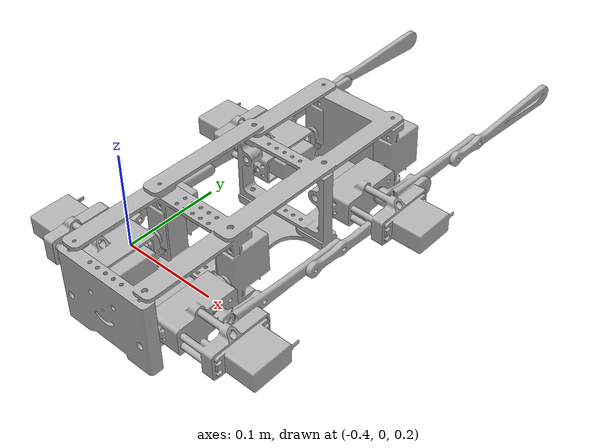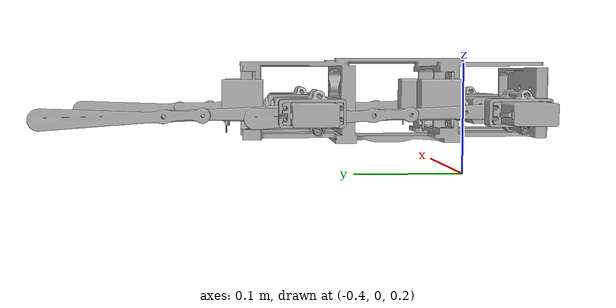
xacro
<?xml version="1.0" ?>
<robot name="unoffcial_dog" xmlns:xacro="http://www.ros.org/wiki/xacro">

<xacro:include filename="$(find unoffcial_dog_description)/urdf/materials.xacro" />
<xacro:include filename="$(find unoffcial_dog_description)/urdf/unoffcial_dog.trans" />
<xacro:include filename="$(find unoffcial_dog_description)/urdf/unoffcial_dog.gazebo" />
<link name="base_link">
  <inertial>
    <origin rpy="0 0 0" xyz="-0.30031866605464624 0.0488302386913517 0.25974219951421007"/>
    <mass value="0.2606887362516945"/>
    <inertia ixx="0.002843" ixy="6e-06" ixz="-0.0" iyy="0.000543" iyz="-1.6e-05" izz="0.002868"/>
  </inertial>
  <visual>
    <origin rpy="0 0 0" xyz="0 0 0"/>
    <geometry>
      <mesh filename="package://unoffcial_dog_description/meshes/base_link.stl" scale="0.001 0.001 0.001"/>
    </geometry>
    <material name="silver_default"/>
  </visual>
  <collision>
    <origin rpy="0 0 0" xyz="0 0 0"/>
    <geometry>
      <mesh filename="package://unoffcial_dog_description/meshes/base_link.stl" scale="0.001 0.001 0.001"/>
    </geometry>
  </collision>
</link>

<link name="back_left_thigh_servo_1">
  <inertial>
    <origin rpy="0 0 0" xyz="-0.021539932675100126 -0.00984964533422189 1.4821927035890692e-05"/>
    <mass value="0.25516561316087144"/>
    <inertia ixx="4.4e-05" ixy="-0.0" ixz="0.0" iyy="4.3e-05" iyz="0.0" izz="7e-05"/>
  </inertial>
  <visual>
    <origin rpy="0 0 0" xyz="0.240767 -0.14985 -0.255017"/>
    <geometry>
      <mesh filename="package://unoffcial_dog_description/meshes/back_left_thigh_servo_1.stl" scale="0.001 0.001 0.001"/>
    </geometry>
    <material name="silver_default"/>
  </visual>
  <collision>
    <origin rpy="0 0 0" xyz="0.240767 -0.14985 -0.255017"/>
    <geometry>
      <mesh filename="package://unoffcial_dog_description/meshes/back_left_thigh_servo_1.stl" scale="0.001 0.001 0.001"/>
    </geometry>
  </collision>
</link>

<link name="back_left_knee_servo__1">
  <inertial>
    <origin rpy="0 0 0" xyz="0.02154178489538669 -0.009846250952893237 -1.5704260949100934e-05"/>
    <mass value="0.25516561316087183"/>
    <inertia ixx="4.4e-05" ixy="0.0" ixz="0.0" iyy="4.3e-05" iyz="-0.0" izz="7e-05"/>
  </inertial>
  <visual>
    <origin rpy="0 0 0" xyz="0.212767 -0.149853 -0.254997"/>
    <geometry>
      <mesh filename="package://unoffcial_dog_description/meshes/back_left_knee_servo__1.stl" scale="0.001 0.001 0.001"/>
    </geometry>
    <material name="silver_default"/>
  </visual>
  <collision>
    <origin rpy="0 0 0" xyz="0.212767 -0.149853 -0.254997"/>
    <geometry>
      <mesh filename="package://unoffcial_dog_description/meshes/back_left_knee_servo__1.stl" scale="0.001 0.001 0.001"/>
    </geometry>
  </collision>
</link>

<link name="back_left_InnerHip_1">
  <inertial>
    <origin rpy="0 0 0" xyz="0.02252999341411238 -0.03294437633347036 -3.5237842516799844e-05"/>
    <mass value="0.033152736768248585"/>
    <inertia ixx="1.8e-05" ixy="2e-06" ixz="0.0" iyy="1.8e-05" iyz="-0.0" izz="2.9e-05"/>
  </inertial>
  <visual>
    <origin rpy="0 0 0" xyz="0.259769 -0.173896 -0.25503"/>
    <geometry>
      <mesh filename="package://unoffcial_dog_description/meshes/back_left_InnerHip_1.stl" scale="0.001 0.001 0.001"/>
    </geometry>
    <material name="silver_default"/>
  </visual>
  <collision>
    <origin rpy="0 0 0" xyz="0.259769 -0.173896 -0.25503"/>
    <geometry>
      <mesh filename="package://unoffcial_dog_description/meshes/back_left_InnerHip_1.stl" scale="0.001 0.001 0.001"/>
    </geometry>
  </collision>
</link>

<link name="back_left_thigh_link_1">
  <inertial>
    <origin rpy="0 0 0" xyz="0.010041312727565088 0.04987827268577877 -0.0012438021817487988"/>
    <mass value="0.07793248271306506"/>
    <inertia ixx="0.000122" ixy="-6e-06" ixz="0.0" iyy="2e-06" iyz="3e-06" izz="0.000122"/>
  </inertial>
  <visual>
    <origin rpy="0 0 0" xyz="0.236967 -0.149851 -0.255014"/>
    <geometry>
      <mesh filename="package://unoffcial_dog_description/meshes/back_left_thigh_link_1.stl" scale="0.001 0.001 0.001"/>
    </geometry>
    <material name="silver_default"/>
  </visual>
  <collision>
    <origin rpy="0 0 0" xyz="0.236967 -0.149851 -0.255014"/>
    <geometry>
      <mesh filename="package://unoffcial_dog_description/meshes/back_left_thigh_link_1.stl" scale="0.001 0.001 0.001"/>
    </geometry>
  </collision>
</link>

<link name="back_left_knee_link_1">
  <inertial>
    <origin rpy="0 0 0" xyz="0.0029007037865719787 0.05153033333109758 -0.0012309594639320909"/>
    <mass value="0.09455286210059435"/>
    <inertia ixx="0.000198" ixy="-0.0" ixz="0.0" iyy="2e-06" iyz="4e-06" izz="0.000197"/>
  </inertial>
  <visual>
    <origin rpy="0 0 0" xyz="0.22248 -0.273305 -0.251899"/>
    <geometry>
      <mesh filename="package://unoffcial_dog_description/meshes/back_left_knee_link_1.stl" scale="0.001 0.001 0.001"/>
    </geometry>
    <material name="silver_default"/>
  </visual>
  <collision>
    <origin rpy="0 0 0" xyz="0.22248 -0.273305 -0.251899"/>
    <geometry>
      <mesh filename="package://unoffcial_dog_description/meshes/back_left_knee_link_1.stl" scale="0.001 0.001 0.001"/>
    </geometry>
  </collision>
</link>

<link name="back_left_adduction_servo_1">
  <inertial>
    <origin rpy="0 0 0" xyz="-0.004565263663396879 0.011690577948047537 -0.024985588171213602"/>
    <mass value="0.25516561316087166"/>
    <inertia ixx="7e-05" ixy="0.0" ixz="0.0" iyy="4.4e-05" iyz="-0.0" izz="4.3e-05"/>
  </inertial>
  <visual>
    <origin rpy="0 0 0" xyz="0.255378 -0.187546 -0.289862"/>
    <geometry>
      <mesh filename="package://unoffcial_dog_description/meshes/back_left_adduction_servo_1.stl" scale="0.001 0.001 0.001"/>
    </geometry>
    <material name="silver_default"/>
  </visual>
  <collision>
    <origin rpy="0 0 0" xyz="0.255378 -0.187546 -0.289862"/>
    <geometry>
      <mesh filename="package://unoffcial_dog_description/meshes/back_left_adduction_servo_1.stl" scale="0.001 0.001 0.001"/>
    </geometry>
  </collision>
</link>

<link name="back_right_InnerHip__1">
  <inertial>
    <origin rpy="0 0 0" xyz="-0.02252396679275276 -0.035950488465180674 -3.571377814287624e-05"/>
    <mass value="0.0331527367682486"/>
    <inertia ixx="1.8e-05" ixy="-2e-06" ixz="-0.0" iyy="1.8e-05" iyz="-0.0" izz="2.9e-05"/>
  </inertial>
  <visual>
    <origin rpy="0 0 0" xyz="0.340982 -0.173888 -0.255205"/>
    <geometry>
      <mesh filename="package://unoffcial_dog_description/meshes/back_right_InnerHip__1.stl" scale="0.001 0.001 0.001"/>
    </geometry>
    <material name="silver_default"/>
  </visual>
  <collision>
    <origin rpy="0 0 0" xyz="0.340982 -0.173888 -0.255205"/>
    <geometry>
      <mesh filename="package://unoffcial_dog_description/meshes/back_right_InnerHip__1.stl" scale="0.001 0.001 0.001"/>
    </geometry>
  </collision>
</link>

<link name="back_right_thigh_servo__1">
  <inertial>
    <origin rpy="0 0 0" xyz="0.021542130039575724 -0.009846247320946994 1.534599140984305e-05"/>
    <mass value="0.25516561316087144"/>
    <inertia ixx="4.4e-05" ixy="0.0" ixz="-0.0" iyy="4.3e-05" iyz="0.0" izz="7e-05"/>
  </inertial>
  <visual>
    <origin rpy="0 0 0" xyz="0.35998 -0.146837 -0.255191"/>
    <geometry>
      <mesh filename="package://unoffcial_dog_description/meshes/back_right_thigh_servo__1.stl" scale="0.001 0.001 0.001"/>
    </geometry>
    <material name="silver_default"/>
  </visual>
  <collision>
    <origin rpy="0 0 0" xyz="0.35998 -0.146837 -0.255191"/>
    <geometry>
      <mesh filename="package://unoffcial_dog_description/meshes/back_right_thigh_servo__1.stl" scale="0.001 0.001 0.001"/>
    </geometry>
  </collision>
</link>

<link name="back_right_knee_servo___1">
  <inertial>
    <origin rpy="0 0 0" xyz="-0.021539587530909232 -0.009849641702402906 -1.5180196574704485e-05"/>
    <mass value="0.2551656131608718"/>
    <inertia ixx="4.4e-05" ixy="-0.0" ixz="-0.0" iyy="4.3e-05" iyz="-0.0" izz="7e-05"/>
  </inertial>
  <visual>
    <origin rpy="0 0 0" xyz="0.38798 -0.146834 -0.255171"/>
    <geometry>
      <mesh filename="package://unoffcial_dog_description/meshes/back_right_knee_servo___1.stl" scale="0.001 0.001 0.001"/>
    </geometry>
    <material name="silver_default"/>
  </visual>
  <collision>
    <origin rpy="0 0 0" xyz="0.38798 -0.146834 -0.255171"/>
    <geometry>
      <mesh filename="package://unoffcial_dog_description/meshes/back_right_knee_servo___1.stl" scale="0.001 0.001 0.001"/>
    </geometry>
  </collision>
</link>

<link name="back_right_thigh_link__1">
  <inertial>
    <origin rpy="0 0 0" xyz="-0.010049892177519892 0.049877721429336136 -0.001243337321072624"/>
    <mass value="0.07793276693390058"/>
    <inertia ixx="0.000122" ixy="6e-06" ixz="-0.0" iyy="2e-06" iyz="3e-06" izz="0.000122"/>
  </inertial>
  <visual>
    <origin rpy="0 0 0" xyz="0.36378 -0.146836 -0.255188"/>
    <geometry>
      <mesh filename="package://unoffcial_dog_description/meshes/back_right_thigh_link__1.stl" scale="0.001 0.001 0.001"/>
    </geometry>
    <material name="silver_default"/>
  </visual>
  <collision>
    <origin rpy="0 0 0" xyz="0.36378 -0.146836 -0.255188"/>
    <geometry>
      <mesh filename="package://unoffcial_dog_description/meshes/back_right_thigh_link__1.stl" scale="0.001 0.001 0.001"/>
    </geometry>
  </collision>
</link>

<link name="back_right_knee_link__1">
  <inertial>
    <origin rpy="0 0 0" xyz="-0.0029097605639761825 0.0515290409527267 -0.0012304353995504225"/>
    <mass value="0.09455286210059435"/>
    <inertia ixx="0.000198" ixy="0.0" ixz="-0.0" iyy="2e-06" iyz="4e-06" izz="0.000197"/>
  </inertial>
  <visual>
    <origin rpy="0 0 0" xyz="0.378289 -0.270289 -0.252073"/>
    <geometry>
      <mesh filename="package://unoffcial_dog_description/meshes/back_right_knee_link__1.stl" scale="0.001 0.001 0.001"/>
    </geometry>
    <material name="silver_default"/>
  </visual>
  <collision>
    <origin rpy="0 0 0" xyz="0.378289 -0.270289 -0.252073"/>
    <geometry>
      <mesh filename="package://unoffcial_dog_description/meshes/back_right_knee_link__1.stl" scale="0.001 0.001 0.001"/>
    </geometry>
  </collision>
</link>

<link name="back_right_adduction_servo__1">
  <inertial>
    <origin rpy="0 0 0" xyz="-0.005434466620742817 0.011690303102358995 -0.02481106410683942"/>
    <mass value="0.2551656131608718"/>
    <inertia ixx="7e-05" ixy="-0.0" ixz="-0.0" iyy="4.4e-05" iyz="-0.0" izz="4.3e-05"/>
  </inertial>
  <visual>
    <origin rpy="0 0 0" xyz="0.335378 -0.187539 -0.289862"/>
    <geometry>
      <mesh filename="package://unoffcial_dog_description/meshes/back_right_adduction_servo__1.stl" scale="0.001 0.001 0.001"/>
    </geometry>
    <material name="silver_default"/>
  </visual>
  <collision>
    <origin rpy="0 0 0" xyz="0.335378 -0.187539 -0.289862"/>
    <geometry>
      <mesh filename="package://unoffcial_dog_description/meshes/back_right_adduction_servo__1.stl" scale="0.001 0.001 0.001"/>
    </geometry>
  </collision>
</link>

<link name="front_left_InnerHip__1">
  <inertial>
    <origin rpy="0 0 0" xyz="0.022530563781380353 -0.03326145347802484 -3.5237842538504704e-05"/>
    <mass value="0.063152736768248585"/> <!-- changing mass here 0.033152736768248585 to 0.063152736768248585-->
    <inertia ixx="1.8e-05" ixy="2e-06" ixz="0.0" iyy="1.8e-05" iyz="-0.0" izz="2.9e-05"/>
  </inertial>
  <visual>
    <origin rpy="0 0 0" xyz="0.259752 0.021104 -0.25503"/>
    <geometry>
      <mesh filename="package://unoffcial_dog_description/meshes/front_left_InnerHip__1.stl" scale="0.001 0.001 0.001"/>
    </geometry>
    <material name="silver_default"/>
  </visual>
  <collision>
    <origin rpy="0 0 0" xyz="0.259752 0.021104 -0.25503"/>
    <geometry>
      <mesh filename="package://unoffcial_dog_description/meshes/front_left_InnerHip__1.stl" scale="0.001 0.001 0.001"/>
    </geometry>
  </collision>
</link>

<link name="front_left_knee_servo___1">
  <inertial>
    <origin rpy="0 0 0" xyz="0.02154135526265502 -0.009846328097448169 -1.570426097058375e-05"/>
    <mass value="0.25516561316087183"/>
    <inertia ixx="4.4e-05" ixy="0.0" ixz="0.0" iyy="4.3e-05" iyz="-0.0" izz="7e-05"/>
  </inertial>
  <visual>
    <origin rpy="0 0 0" xyz="0.212749 0.045464 -0.254997"/>
    <geometry>
      <mesh filename="package://unoffcial_dog_description/meshes/front_left_knee_servo___1.stl" scale="0.001 0.001 0.001"/>
    </geometry>
    <material name="silver_default"/>
  </visual>
  <collision>
    <origin rpy="0 0 0" xyz="0.212749 0.045464 -0.254997"/>
    <geometry>
      <mesh filename="package://unoffcial_dog_description/meshes/front_left_knee_servo___1.stl" scale="0.001 0.001 0.001"/>
    </geometry>
  </collision>
</link>

<link name="front_left_thigh_servo__1">
  <inertial>
    <origin rpy="0 0 0" xyz="-0.02154036230783196 -0.009849722478776607 1.4821927014296854e-05"/>
    <mass value="0.25516561316087144"/>
    <inertia ixx="4.4e-05" ixy="-0.0" ixz="0.0" iyy="4.3e-05" iyz="0.0" izz="7e-05"/>
  </inertial>
  <visual>
    <origin rpy="0 0 0" xyz="0.240749 0.045467 -0.255017"/>
    <geometry>
      <mesh filename="package://unoffcial_dog_description/meshes/front_left_thigh_servo__1.stl" scale="0.001 0.001 0.001"/>
    </geometry>
    <material name="silver_default"/>
  </visual>
  <collision>
    <origin rpy="0 0 0" xyz="0.240749 0.045467 -0.255017"/>
    <geometry>
      <mesh filename="package://unoffcial_dog_description/meshes/front_left_thigh_servo__1.stl" scale="0.001 0.001 0.001"/>
    </geometry>
  </collision>
</link>

<link name="front_left_thigh_link__1">
  <inertial>
    <origin rpy="0 0 0" xyz="0.01004088309483317 0.049879195541223775 -0.0012438021817676725"/>
    <mass value="0.07793248271306506"/>
    <inertia ixx="0.000122" ixy="-6e-06" ixz="0.0" iyy="2e-06" iyz="3e-06" izz="0.000122"/>
  </inertial>
  <visual>
    <origin rpy="0 0 0" xyz="0.236949 0.045467 -0.255014"/>
    <geometry>
      <mesh filename="package://unoffcial_dog_description/meshes/front_left_thigh_link__1.stl" scale="0.001 0.001 0.001"/>
    </geometry>
    <material name="silver_default"/>
  </visual>
  <collision>
    <origin rpy="0 0 0" xyz="0.236949 0.045467 -0.255014"/>
    <geometry>
      <mesh filename="package://unoffcial_dog_description/meshes/front_left_thigh_link__1.stl" scale="0.001 0.001 0.001"/>
    </geometry>
  </collision>
</link>

<link name="front_left_knee_link__1">
  <inertial>
    <origin rpy="0 0 0" xyz="0.0029012741538392284 0.05153025618654167 -0.0012309594639445254"/>
    <mass value="0.09455286210059435"/>
    <inertia ixx="0.000198" ixy="-0.0" ixz="0.0" iyy="2e-06" iyz="4e-06" izz="0.000197"/>
  </inertial>
  <visual>
    <origin rpy="0 0 0" xyz="0.222463 -0.077988 -0.251899"/>
    <geometry>
      <mesh filename="package://unoffcial_dog_description/meshes/front_left_knee_link__1.stl" scale="0.001 0.001 0.001"/>
    </geometry>
    <material name="silver_default"/>
  </visual>
  <collision>
    <origin rpy="0 0 0" xyz="0.222463 -0.077988 -0.251899"/>
    <geometry>
      <mesh filename="package://unoffcial_dog_description/meshes/front_left_knee_link__1.stl" scale="0.001 0.001 0.001"/>
    </geometry>
  </collision>
</link>

<link name="front_left_adduction_servo_1">
  <inertial>
    <origin rpy="0 0 0" xyz="-0.004565721819880242 0.011690578737063306 -0.024985588171235695"/>
    <mass value="0.45516561316087166"/> <!-- changing mass here 0.25516561316087166 to 0.55516561316087166-->
    <inertia ixx="7e-05" ixy="0.0" ixz="0.0" iyy="4.4e-05" iyz="-0.0" izz="4.3e-05"/>
  </inertial>
  <visual>
    <origin rpy="0 0 0" xyz="0.25536 0.007454 -0.289862"/>
    <geometry>
      <mesh filename="package://unoffcial_dog_description/meshes/front_left_adduction_servo_1.stl" scale="0.001 0.001 0.001"/>
    </geometry>
    <material name="silver_default"/>
  </visual>
  <collision>
    <origin rpy="0 0 0" xyz="0.25536 0.007454 -0.289862"/>
    <geometry>
      <mesh filename="package://unoffcial_dog_description/meshes/front_left_adduction_servo_1.stl" scale="0.001 0.001 0.001"/>
    </geometry>
  </collision>
</link>

<link name="front_right_innerHip_1">
  <inertial>
    <origin rpy="0 0 0" xyz="-0.02252369538938387 -0.03294419997402807 -3.5713778164248033e-05"/>
    <mass value="0.0631527367682486"/>  <!-- changing mass here 0.033152736768248585 to 0.063152736768248585-->
    <inertia ixx="1.8e-05" ixy="-2e-06" ixz="-0.0" iyy="1.8e-05" iyz="-0.0" izz="2.9e-05"/>
  </inertial>
  <visual>
    <origin rpy="0 0 0" xyz="0.340965 0.021112 -0.255205"/>
    <geometry>
      <mesh filename="package://unoffcial_dog_description/meshes/front_right_innerHip_1.stl" scale="0.001 0.001 0.001"/>
    </geometry>
    <material name="silver_default"/>
  </visual>
  <collision>
    <origin rpy="0 0 0" xyz="0.340965 0.021112 -0.255205"/>
    <geometry>
      <mesh filename="package://unoffcial_dog_description/meshes/front_right_innerHip_1.stl" scale="0.001 0.001 0.001"/>
    </geometry>
  </collision>
</link>

<link name="_front_right_high_servo_1">
  <inertial>
    <origin rpy="0 0 0" xyz="0.02154140144294514 -0.009845958829793978 1.5345991388360236e-05"/>
    <mass value="0.25516561316087144"/>
    <inertia ixx="4.4e-05" ixy="0.0" ixz="-0.0" iyy="4.3e-05" iyz="0.0" izz="7e-05"/>
  </inertial>
  <visual>
    <origin rpy="0 0 0" xyz="0.359962 0.045157 -0.255191"/>
    <geometry>
      <mesh filename="package://unoffcial_dog_description/meshes/_front_right_high_servo_1.stl" scale="0.001 0.001 0.001"/>
    </geometry>
    <material name="silver_default"/>
  </visual>
  <collision>
    <origin rpy="0 0 0" xyz="0.359962 0.045157 -0.255191"/>
    <geometry>
      <mesh filename="package://unoffcial_dog_description/meshes/_front_right_high_servo_1.stl" scale="0.001 0.001 0.001"/>
    </geometry>
  </collision>
</link>

<link name="_front_right_knee_servo__1">
  <inertial>
    <origin rpy="0 0 0" xyz="-0.021540316127541925 -0.009849353211249627 -1.5180196596076279e-05"/>
    <mass value="0.2551656131608718"/>
    <inertia ixx="4.4e-05" ixy="-0.0" ixz="-0.0" iyy="4.3e-05" iyz="-0.0" izz="7e-05"/>
  </inertial>
  <visual>
    <origin rpy="0 0 0" xyz="0.387962 0.04516 -0.255171"/>
    <geometry>
      <mesh filename="package://unoffcial_dog_description/meshes/_front_right_knee_servo__1.stl" scale="0.001 0.001 0.001"/>
    </geometry>
    <material name="silver_default"/>
  </visual>
  <collision>
    <origin rpy="0 0 0" xyz="0.387962 0.04516 -0.255171"/>
    <geometry>
      <mesh filename="package://unoffcial_dog_description/meshes/_front_right_knee_servo__1.stl" scale="0.001 0.001 0.001"/>
    </geometry>
  </collision>
</link>

<link name="front_right_thigh_link_1">
  <inertial>
    <origin rpy="0 0 0" xyz="-0.010050620774152252 0.04987700992048759 -0.0012433373210943288"/>
    <mass value="0.07793276693390058"/>
    <inertia ixx="0.000122" ixy="6e-06" ixz="-0.0" iyy="2e-06" iyz="3e-06" izz="0.000122"/>
  </inertial>
  <visual>
    <origin rpy="0 0 0" xyz="0.363762 0.045157 -0.255188"/>
    <geometry>
      <mesh filename="package://unoffcial_dog_description/meshes/front_right_thigh_link_1.stl" scale="0.001 0.001 0.001"/>
    </geometry>
    <material name="silver_default"/>
  </visual>
  <collision>
    <origin rpy="0 0 0" xyz="0.363762 0.045157 -0.255188"/>
    <geometry>
      <mesh filename="package://unoffcial_dog_description/meshes/front_right_thigh_link_1.stl" scale="0.001 0.001 0.001"/>
    </geometry>
  </collision>
</link>

<link name="front_right_knee_link_1">
  <inertial>
    <origin rpy="0 0 0" xyz="-0.002910489160612484 0.05152932944387745 -0.0012304353995717388"/>
    <mass value="0.09455286210059435"/>
    <inertia ixx="0.000198" ixy="0.0" ixz="-0.0" iyy="2e-06" iyz="4e-06" izz="0.000197"/>
  </inertial>
  <visual>
    <origin rpy="0 0 0" xyz="0.378271 -0.078295 -0.252073"/>
    <geometry>
      <mesh filename="package://unoffcial_dog_description/meshes/front_right_knee_link_1.stl" scale="0.001 0.001 0.001"/>
    </geometry>
    <material name="silver_default"/>
  </visual>
  <collision>
    <origin rpy="0 0 0" xyz="0.378271 -0.078295 -0.252073"/>
    <geometry>
      <mesh filename="package://unoffcial_dog_description/meshes/front_right_knee_link_1.stl" scale="0.001 0.001 0.001"/>
    </geometry>
  </collision>
</link>

<link name="front_right_adduction_Servo_1">
  <inertial>
    <origin rpy="0 0 0" xyz="-0.0054349247772262355 0.011690303891375195 -0.02481106410686129"/>
    <mass value="0.4551656131608718"/><!-- changing mass here 0.25516561316087166 to 0.55516561316087166-->
    <inertia ixx="7e-05" ixy="-0.0" ixz="-0.0" iyy="4.4e-05" iyz="-0.0" izz="4.3e-05"/>
  </inertial>
  <visual>
    <origin rpy="0 0 0" xyz="0.33536 0.007461 -0.289862"/>
    <geometry>
      <mesh filename="package://unoffcial_dog_description/meshes/front_right_adduction_Servo_1.stl" scale="0.001 0.001 0.001"/>
    </geometry>
    <material name="silver_default"/>
  </visual>
  <collision>
    <origin rpy="0 0 0" xyz="0.33536 0.007461 -0.289862"/>
    <geometry>
      <mesh filename="package://unoffcial_dog_description/meshes/front_right_adduction_Servo_1.stl" scale="0.001 0.001 0.001"/>
    </geometry>
  </collision>
</link>

<joint name="left_back_fixed_thigh_servo" type="fixed">
  <origin rpy="0 0 0" xyz="0.019002 -0.024046 -1.3e-05"/>
  <parent link="back_left_InnerHip_1"/>
  <child link="back_left_thigh_servo_1"/>
</joint>

<joint name="left_back_fixed_knee_servo" type="fixed">
  <origin rpy="0 0 0" xyz="0.047002 -0.024043 -3.3e-05"/>
  <parent link="back_left_InnerHip_1"/>
  <child link="back_left_knee_servo__1"/>
</joint>

<joint name="left_back_adduction_joint" type="continuous">
  <origin rpy="0 0 0" xyz="-0.004391 -0.01365 -0.034832"/>
  <parent link="back_left_adduction_servo_1"/>
  <child link="back_left_InnerHip_1"/>
  <axis xyz="9e-05 -1.0 -0.0"/>
  <limit lower="-1.57" upper="1.57" effort="10" velocity="2" />
  <dynamics damping="0.1" friction="0.0"/>
</joint>

<joint name="left_back_thigh_joint" type="continuous">
  <origin rpy="0 0 0" xyz="0.0038 1e-06 -3e-06"/>
  <parent link="back_left_thigh_servo_1"/>
  <child link="back_left_thigh_link_1"/>
  <axis xyz="1.0 9e-05 -0.000711"/>
  <limit lower="-1.57" upper="1.57" effort="10" velocity="2" />
  <dynamics damping="0.1" friction="0.0"/>
</joint>

<joint name="left_back_knee_joint" type="continuous">
  <origin rpy="0 0 0" xyz="0.014487 0.123454 -0.003115"/>
  <parent link="back_left_thigh_link_1"/>
  <child link="back_left_knee_link_1"/>
  <axis xyz="1.0 9e-05 -0.000711"/>
  <limit lower="-1.57" upper="1.57" effort="10" velocity="2" />
  <dynamics damping="0.1" friction="0.0"/>
</joint>

<joint name="frame_left_back" type="fixed">
  <origin rpy="0 0 0" xyz="-0.255378 0.187546 0.289862"/>
  <parent link="base_link"/>
  <child link="back_left_adduction_servo_1"/>
</joint>

<joint name="right_back_adduction_joint" type="continuous">
  <origin rpy="0 0 0" xyz="-0.005604 -0.013651 -0.034657"/>
  <parent link="back_right_adduction_servo__1"/>
  <child link="back_right_InnerHip__1"/>
  <axis xyz="-9e-05 1.0 0.0"/>
  <limit lower="-1.57" upper="1.57" effort="10" velocity="2" />
  <dynamics damping="0.1" friction="0.0"/>
</joint>

<joint name="right_back_thigh_servo" type="fixed">
  <origin rpy="0 0 0" xyz="-0.018998 -0.027051 -1.4e-05"/>
  <parent link="back_right_InnerHip__1"/>
  <child link="back_right_thigh_servo__1"/>
</joint>

<joint name="right_back_knee_servo" type="fixed">
  <origin rpy="0 0 0" xyz="-0.046998 -0.027054 -3.4e-05"/>
  <parent link="back_right_InnerHip__1"/>
  <child link="back_right_knee_servo___1"/>
</joint>

<joint name="right_back_thigh_joint" type="continuous">
  <origin rpy="0 0 0" xyz="-0.0038 -1e-06 -3e-06"/>
  <parent link="back_right_thigh_servo__1"/>
  <child link="back_right_thigh_link__1"/>
  <axis xyz="1.0 9e-05 0.000711"/>
  <limit lower="-1.57" upper="1.57" effort="10" velocity="2" />
  <dynamics damping="0.1" friction="0.0"/>
</joint>

<joint name="right_back_knee_joint" type="continuous">
  <origin rpy="0 0 0" xyz="-0.014509 0.123453 -0.003115"/>
  <parent link="back_right_thigh_link__1"/>
  <child link="back_right_knee_link__1"/>
  <axis xyz="1.0 9e-05 0.000711"/>
  <limit lower="-1.57" upper="1.57" effort="10" velocity="2" />
  <dynamics damping="0.1" friction="0.0"/>
</joint>

<joint name="frame_right_back" type="fixed">
  <origin rpy="0 0 0" xyz="-0.335378 0.187539 0.289862"/>
  <parent link="base_link"/>
  <child link="back_right_adduction_servo__1"/>
</joint>

<joint name="left_front_adduction_joint" type="continuous">
  <origin rpy="0 0 0" xyz="-0.004392 -0.01365 -0.034832"/>
  <parent link="front_left_adduction_servo_1"/>
  <child link="front_left_InnerHip__1"/>
  <axis xyz="9e-05 -1.0 -0.0"/>
  <limit lower="-1.57" upper="1.57" effort="10" velocity="2" />
  <dynamics damping="0.1" friction="0.0"/>
</joint>

<joint name="left_front_thigh_servo" type="fixed">
  <origin rpy="0 0 0" xyz="0.047003 -0.02436 -3.3e-05"/>
  <parent link="front_left_InnerHip__1"/>
  <child link="front_left_knee_servo___1"/>
</joint>

<joint name="left_front_knee_servo" type="fixed">
  <origin rpy="0 0 0" xyz="0.019003 -0.024363 -1.3e-05"/>
  <parent link="front_left_InnerHip__1"/>
  <child link="front_left_thigh_servo__1"/>
</joint>

<joint name="left_front_thigh_joint" type="continuous">
  <origin rpy="0 0 0" xyz="0.0038 0.0 -3e-06"/>
  <parent link="front_left_thigh_servo__1"/>
  <child link="front_left_thigh_link__1"/>
  <axis xyz="1.0 9e-05 -0.000711"/>
  <limit lower="-1.57" upper="1.57" effort="10" velocity="2" />
  <dynamics damping="0.1" friction="0.0"/>
</joint>

<joint name="left_front_knee_joint" type="continuous">
  <origin rpy="0 0 0" xyz="0.014486 0.123455 -0.003115"/>
  <parent link="front_left_thigh_link__1"/>
  <child link="front_left_knee_link__1"/>
  <axis xyz="1.0 9e-05 -0.000711"/>
  <limit lower="-1.57" upper="1.57" effort="10" velocity="2" />
  <dynamics damping="0.1" friction="0.0"/>
</joint>

<joint name="front_left_front" type="fixed">
  <origin rpy="0 0 0" xyz="-0.25536 -0.007454 0.289862"/>
  <parent link="base_link"/>
  <child link="front_left_adduction_servo_1"/>
</joint>

<joint name="front_right_adduction_joint" type="continuous">
  <origin rpy="0 0 0" xyz="-0.005605 -0.013651 -0.034657"/>
  <parent link="front_right_adduction_Servo_1"/>
  <child link="front_right_innerHip_1"/>
  <axis xyz="-9e-05 1.0 0.0"/>
  <limit lower="-1.57" upper="1.57" effort="10" velocity="2" />
  <dynamics damping="0.1" friction="0.0"/>
</joint>

<joint name="front_right_thigh_servo" type="fixed">
  <origin rpy="0 0 0" xyz="-0.018997 -0.024045 -1.4e-05"/>
  <parent link="front_right_innerHip_1"/>
  <child link="_front_right_high_servo_1"/>
</joint>

<joint name="front_right_knee_servo" type="fixed">
  <origin rpy="0 0 0" xyz="-0.046997 -0.024048 -3.4e-05"/>
  <parent link="front_right_innerHip_1"/>
  <child link="_front_right_knee_servo__1"/>
</joint>

<joint name="front_right_thigh_joint" type="continuous">
  <origin rpy="0 0 0" xyz="-0.0038 0.0 -3e-06"/>
  <parent link="_front_right_high_servo_1"/>
  <child link="front_right_thigh_link_1"/>
  <axis xyz="1.0 9e-05 0.000711"/>
  <limit lower="-1.57" upper="1.57" effort="10" velocity="2" />
  <dynamics damping="0.1" friction="0.0"/>
</joint>

<joint name="front_right_knee_joint" type="continuous">
  <origin rpy="0 0 0" xyz="-0.014509 0.123452 -0.003115"/>
  <parent link="front_right_thigh_link_1"/>
  <child link="front_right_knee_link_1"/>
  <axis xyz="1.0 9e-05 0.000711"/>
  <limit lower="-1.57" upper="1.57" effort="10" velocity="2" />
  <dynamics damping="0.1" friction="0.0"/>
</joint>

<joint name="frame_front_right" type="fixed">
  <origin rpy="0 0 0" xyz="-0.33536 -0.007461 0.289862"/>
  <parent link="base_link"/>
  <child link="front_right_adduction_Servo_1"/>
</joint>

</robot>

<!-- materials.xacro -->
<robot name="unoffcial_dog" xmlns:xacro="http://www.ros.org/wiki/xacro" >

<material name="silver_default">
  <color rgba="0.700 0.700 0.700 1.000"/>
</material>

</robot>

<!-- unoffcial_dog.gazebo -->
<robot name="unoffcial_dog" xmlns:xacro="http://www.ros.org/wiki/xacro" >

<xacro:property name="body_color" value="Gazebo/Silver" />

<gazebo>
<plugin name="gazebo_ros_control" filename="libgazebo_ros_control.so">
    <robotNamespace>/unoffcial_dog_controller</robotNamespace>
    <robotSimType>gazebo_ros_control/DefaultRobotHWSim</robotSimType>
</plugin>
</gazebo>

<gazebo reference="base_link">
  <material>${body_color}</material>
  <mu1>10</mu1>
  <mu2>10</mu2>
  <selfCollide>false</selfCollide>
  <gravity>true</gravity>
</gazebo>

<gazebo reference="back_left_thigh_servo_1">
  <material>${body_color}</material>
  <mu1>10</mu1>
  <mu2>10</mu2>
  <selfCollide>false</selfCollide>
</gazebo>

<gazebo reference="back_left_knee_servo__1">
  <material>${body_color}</material>
  <mu1>10</mu1>
  <mu2>10</mu2>
  <minDepth>0.0002</minDepth>
  <kp  value="7000.0"/>
  <kd  value="100.0"/>
  <selfCollide>false</selfCollide>
</gazebo>

<gazebo reference="back_left_InnerHip_1">
  <material>${body_color}</material>
  <mu1>10</mu1>
  <mu2>10</mu2>
  <selfCollide>false</selfCollide>
</gazebo>

<gazebo reference="back_left_thigh_link_1">
  <material>${body_color}</material>
  <mu1>10</mu1>
  <mu2>10</mu2>
  <selfCollide>false</selfCollide>
</gazebo>

<gazebo reference="back_left_knee_link_1">
  <material>${body_color}</material>
  <mu1>10</mu1>
  <mu2>10</mu2>
  <minDepth>0.0002</minDepth>
  <kp  value="7000.0"/>
  <kd  value="100.0"/>
  <selfCollide>false</selfCollide>
</gazebo>

<gazebo reference="back_left_adduction_servo_1">
  <material>${body_color}</material>
  <mu1>10</mu1>
  <mu2>10</mu2>
  <selfCollide>false</selfCollide>
</gazebo>

<gazebo reference="back_right_InnerHip__1">
  <material>${body_color}</material>
  <mu1>10</mu1>
  <mu2>10</mu2>
  <selfCollide>false</selfCollide>
</gazebo>

<gazebo reference="back_right_thigh_servo__1">
  <material>${body_color}</material>
  <mu1>10</mu1>
  <mu2>10</mu2>
  <selfCollide>false</selfCollide>
</gazebo>

<gazebo reference="back_right_knee_servo___1">
  <material>${body_color}</material>
  <mu1>10</mu1>
  <mu2>10</mu2>
  <selfCollide>false</selfCollide>
</gazebo>

<gazebo reference="back_right_thigh_link__1">
  <material>${body_color}</material>
  <mu1>10</mu1>
  <mu2>10</mu2>
  <selfCollide>false</selfCollide>
</gazebo>

<gazebo reference="back_right_knee_link__1">
  <material>${body_color}</material>
  <mu1>10</mu1>
  <mu2>10</mu2>
  <minDepth>0.0002</minDepth>
  <kp  value="7000.0"/>
  <kd  value="100.0"/>
  <selfCollide>false</selfCollide>
</gazebo>

<gazebo reference="back_right_adduction_servo__1">
  <material>${body_color}</material>
  <mu1>10</mu1>
  <mu2>10</mu2>
  <selfCollide>false</selfCollide>
</gazebo>

<gazebo reference="front_left_InnerHip__1">
  <material>${body_color}</material>
  <mu1>10</mu1>
  <mu2>10</mu2>
  <selfCollide>false</selfCollide>
</gazebo>

<gazebo reference="front_left_knee_servo___1">
  <material>${body_color}</material>
  <mu1>10</mu1>
  <mu2>10</mu2>
  <selfCollide>false</selfCollide>
</gazebo>

<gazebo reference="front_left_thigh_servo__1">
  <material>${body_color}</material>
  <mu1>10</mu1>
  <mu2>10</mu2>
  <selfCollide>false</selfCollide>
</gazebo>

<gazebo reference="front_left_thigh_link__1">
  <material>${body_color}</material>
  <mu1>10</mu1>
  <mu2>10</mu2>
  <selfCollide>false</selfCollide>
</gazebo>

<gazebo reference="front_left_knee_link__1">
  <material>${body_color}</material>
  <mu1>10</mu1>
  <mu2>10</mu2>
  <minDepth>0.0002</minDepth>
  <kp  value="7000.0"/>
  <kd  value="100.0"/>
  <selfCollide>false</selfCollide>
</gazebo>

<gazebo reference="front_left_adduction_servo_1">
  <material>${body_color}</material>
  <mu1>10</mu1>
  <mu2>10</mu2>
  <selfCollide>false</selfCollide>
</gazebo>

<gazebo reference="front_right_innerHip_1">
  <material>${body_color}</material>
  <mu1>10</mu1>
  <mu2>10</mu2>
  <selfCollide>false</selfCollide>
</gazebo>

<gazebo reference="_front_right_high_servo_1">
  <material>${body_color}</material>
  <mu1>10</mu1>
  <mu2>10</mu2>
  <selfCollide>false</selfCollide>
</gazebo>

<gazebo reference="_front_right_knee_servo__1">
  <material>${body_color}</material>
  <mu1>10</mu1>
  <mu2>10</mu2>
  <selfCollide>false</selfCollide>
</gazebo>

<gazebo reference="front_right_thigh_link_1">
  <material>${body_color}</material>
  <mu1>10</mu1>
  <mu2>10</mu2>
  <selfCollide>false</selfCollide>
</gazebo>

<gazebo reference="front_right_knee_link_1">
  <material>${body_color}</material>
  <mu1>10</mu1>
  <mu2>10</mu2>
  <minDepth>0.0002</minDepth>
  <kp  value="7000.0"/>
  <kd  value="100.0"/>
  <selfCollide>false</selfCollide>
</gazebo>

<gazebo reference="front_right_adduction_Servo_1">
  <material>${body_color}</material>
  <mu1>10</mu1>
  <mu2>10</mu2>
  <selfCollide>false</selfCollide>
</gazebo>

</robot>
